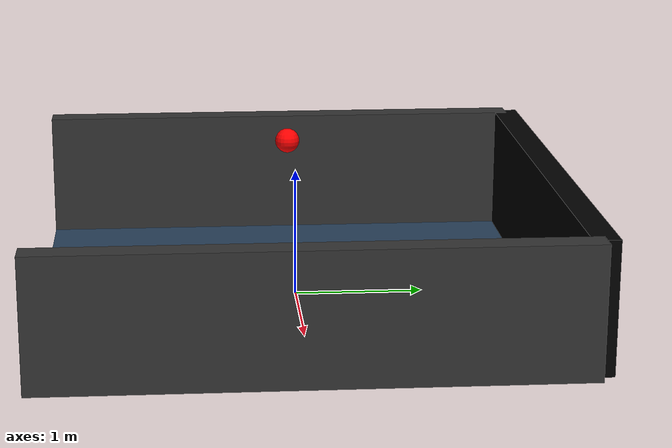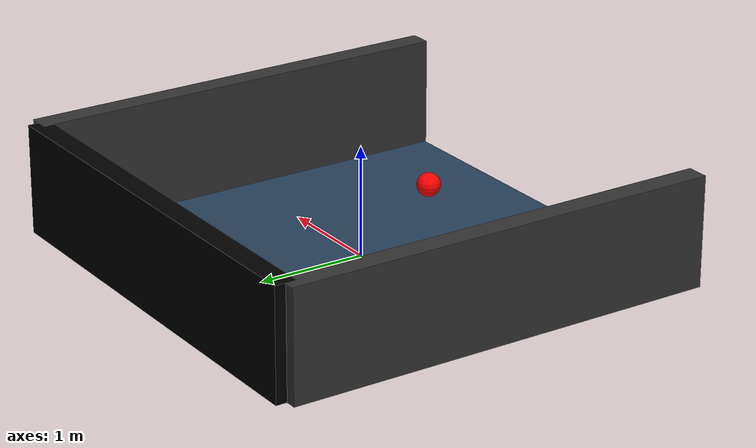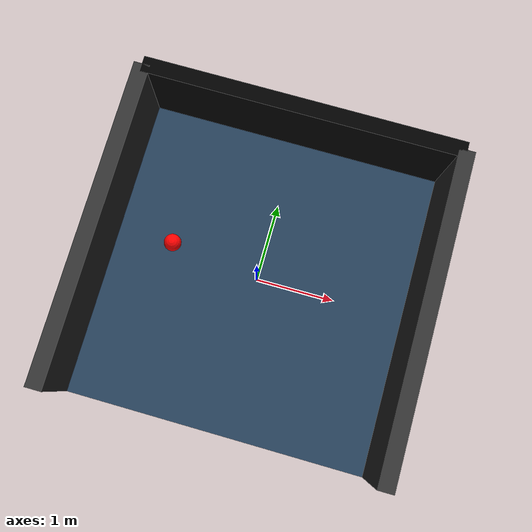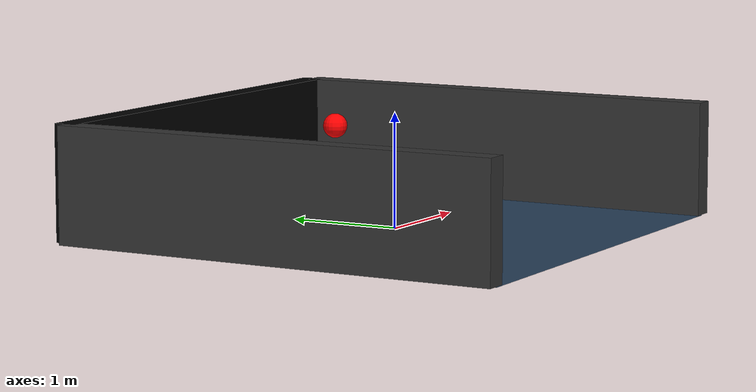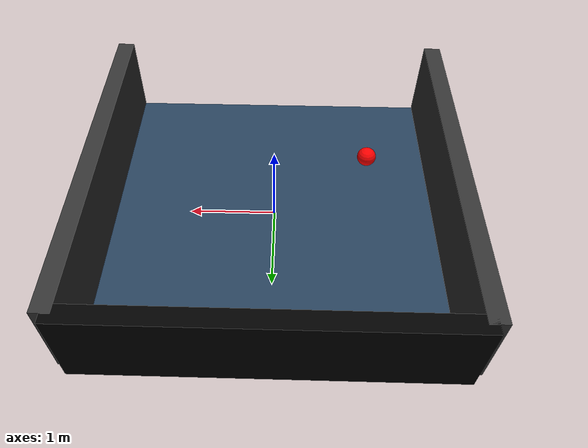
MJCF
<mujoco>
  <option timestep="0.01" gravity="0 0 0" iterations="1" solver="Newton" integrator="Euler" tolerance="1e-8" />
  <visual>
    <headlight ambient=".4 .4 .4" diffuse=".8 .8 .8" specular="0.1 0.1 0.1"/>
    <map znear=".01"/>
    <quality shadowsize="2048"/>
  </visual>
  <asset>
    <texture name="skybox" type="skybox" builtin="gradient" rgb1=".4 .6 .8" rgb2="0 0 0"
             width="800" height="800" mark="random" markrgb="1 1 1"/>
  </asset>
  <asset>
    <texture name="grid" type="2d" builtin="checker" rgb1=".1 .2 .3" rgb2=".2 .3 .4"
             width="300" height="300" mark="edge" markrgb=".2 .3 .4"/>
    <material name="grid" texture="grid" texrepeat="1 1" texuniform="true" reflectance=".2"/>
  </asset>

  <worldbody>
    <body name="ground" pos="0 0 0">
      <geom type="plane" size="2 2 0.1" material="grid"
          friction="0 0 0"
          condim="1"
          solref="-20000 -10"
          solimp="0.9999 0.9999 0.00005 0.5 2">
      </geom>
    </body>

    <body name="ball" pos="-1 0 1">
      <joint name="ball_joint" type="free"/>
      <geom type="sphere" size="0.1" mass="0.1" rgba="1 0 0 1"/>
    </body>

    <!-- Containing walls -->
    <body name="wall_north" pos="0 2 0.5">
      <geom type="box" size="2 0.1 0.5" rgba="0 0 0 1"/>
    </body>
    <body name="wall_east" pos="2 0 0.5">
      <geom type="box" size="0.1 2 0.5" rgba="0.2 0.2 0.2 1"/>
    </body>
    <body name="wall_west" pos="-2 0 0.5">
      <geom type="box" size="0.1 2 0.5" rgba="0.2 0.2 0.2 1"/>
    </body>

  </worldbody>

    <!-- Totally redundant control - just so the rest of the code does not break-->
  <actuator>
    <motor name="dummy_cntrl" joint="ball_joint" gear="0"/>
  </actuator>

</mujoco>
